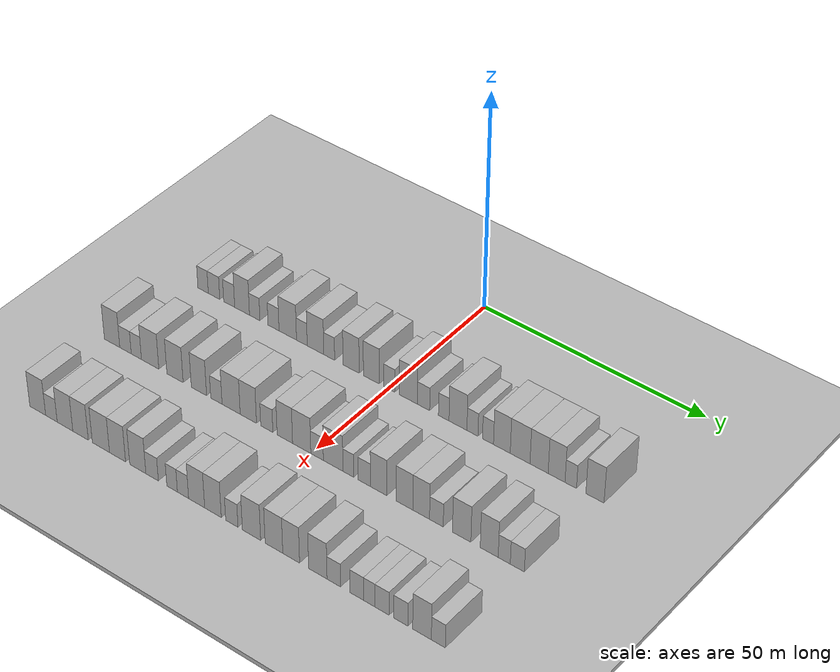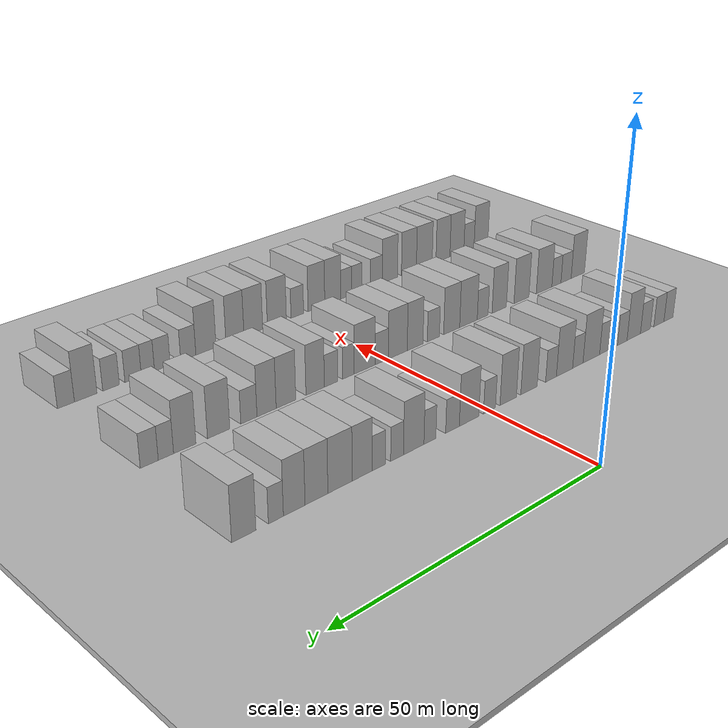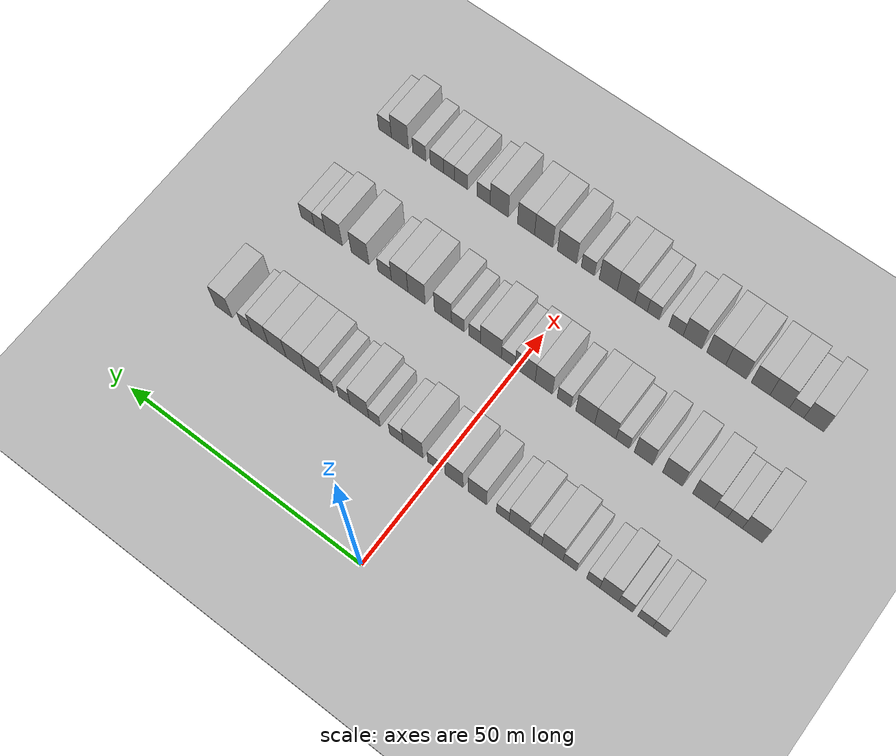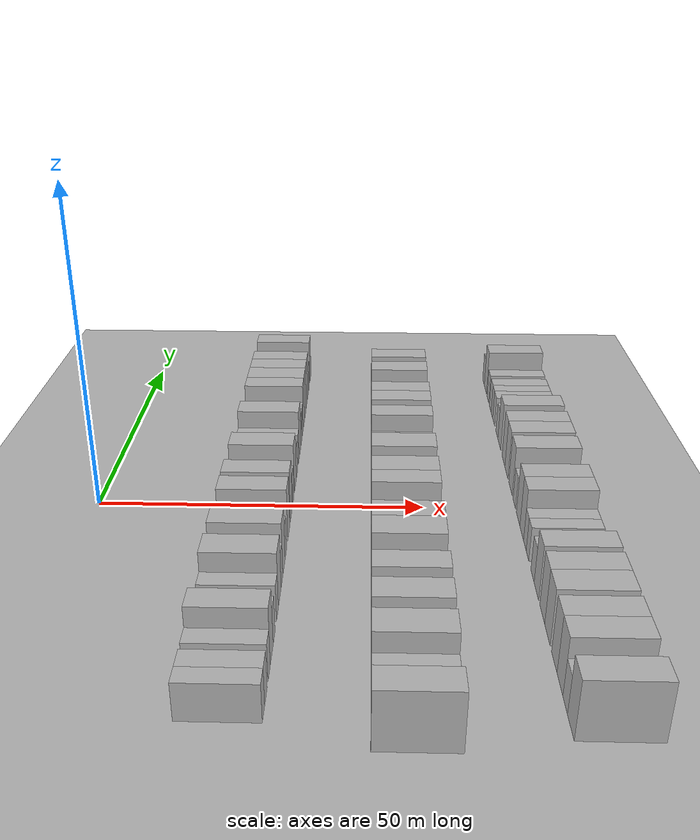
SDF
<sdf version="1.6">
 <world name="default">
  <include><name>ground_plane_1</name><uri>model://HANNAS_ground_plane</uri></include>
  <include>
   <name>ground_plane_2</name>
   <uri>model://HANNAS_ground_plane</uri>
   <pose>100 0 0  0 0 0</pose>
  </include>
  <model name="building_51">
   <static>1</static>
   <pose>25.0000 -44.6773 0 0.000000 0.000000 0.000000</pose>
   <link name="link">
    <pose>0 0 3.00 0 0 0</pose>
    <collision name="collision"><geometry><box><size>10.0000 2.6390 6.0000</size></box></geometry></collision>
    <visual name="visual">
     <cast_shadows>0</cast_shadows>
     <geometry><box><size>10.0000 2.6390 6.0000</size></box></geometry>
     <material>
      <script>
       <uri>model://HANNAS_wall/materials/scripts</uri>
       <uri>model://HANNAS_wall/materials/textures</uri>
       <name>vrc/HANNAS_wall</name>
      </script>
     </material>
    </visual>
   </link>
  </model>
  <model name="building_52">
   <static>1</static>
   <pose>25.0000 -41.9089 0 0.000000 0.000000 0.000000</pose>
   <link name="link">
    <pose>0 0 3.00 0 0 0</pose>
    <collision name="collision"><geometry><box><size>10.0000 2.8977 6.0000</size></box></geometry></collision>
    <visual name="visual">
     <cast_shadows>0</cast_shadows>
     <geometry><box><size>10.0000 2.8977 6.0000</size></box></geometry>
     <material>
      <script>
       <uri>model://HANNAS_wall/materials/scripts</uri>
       <uri>model://HANNAS_wall/materials/textures</uri>
       <name>vrc/HANNAS_wall</name>
      </script>
     </material>
    </visual>
   </link>
  </model>
  <model name="building_53">
   <static>1</static>
   <pose>25.0000 -38.0846 0 0.000000 0.000000 0.000000</pose>
   <link name="link">
    <pose>0 0 3.00 0 0 0</pose>
    <collision name="collision"><geometry><box><size>10.0000 2.7510 6.0000</size></box></geometry></collision>
    <visual name="visual">
     <cast_shadows>0</cast_shadows>
     <geometry><box><size>10.0000 2.7510 6.0000</size></box></geometry>
     <material>
      <script>
       <uri>model://HANNAS_wall/materials/scripts</uri>
       <uri>model://HANNAS_wall/materials/textures</uri>
       <name>vrc/HANNAS_wall</name>
      </script>
     </material>
    </visual>
   </link>
  </model>
  <model name="building_54">
   <static>1</static>
   <pose>25.0000 -34.8641 0 0.000000 0.000000 0.000000</pose>
   <link name="link">
    <pose>0 0 4.50 0 0 0</pose>
    <collision name="collision"><geometry><box><size>10.0000 3.6899 9.0000</size></box></geometry></collision>
    <visual name="visual">
     <cast_shadows>0</cast_shadows>
     <geometry><box><size>10.0000 3.6899 9.0000</size></box></geometry>
     <material>
      <script>
       <uri>model://HANNAS_wall/materials/scripts</uri>
       <uri>model://HANNAS_wall/materials/textures</uri>
       <name>vrc/HANNAS_wall</name>
      </script>
     </material>
    </visual>
   </link>
  </model>
  <model name="building_55">
   <static>1</static>
   <pose>25.0000 -31.7235 0 0.000000 0.000000 0.000000</pose>
   <link name="link">
    <pose>0 0 3.00 0 0 0</pose>
    <collision name="collision"><geometry><box><size>10.0000 2.5914 6.0000</size></box></geometry></collision>
    <visual name="visual">
     <cast_shadows>0</cast_shadows>
     <geometry><box><size>10.0000 2.5914 6.0000</size></box></geometry>
     <material>
      <script>
       <uri>model://HANNAS_wall/materials/scripts</uri>
       <uri>model://HANNAS_wall/materials/textures</uri>
       <name>vrc/HANNAS_wall</name>
      </script>
     </material>
    </visual>
   </link>
  </model>
  <model name="building_56">
   <static>1</static>
   <pose>25.0000 -27.0777 0 0.000000 0.000000 0.000000</pose>
   <link name="link">
    <pose>0 0 3.00 0 0 0</pose>
    <collision name="collision"><geometry><box><size>10.0000 2.7000 6.0000</size></box></geometry></collision>
    <visual name="visual">
     <cast_shadows>0</cast_shadows>
     <geometry><box><size>10.0000 2.7000 6.0000</size></box></geometry>
     <material>
      <script>
       <uri>model://HANNAS_wall/materials/scripts</uri>
       <uri>model://HANNAS_wall/materials/textures</uri>
       <name>vrc/HANNAS_wall</name>
      </script>
     </material>
    </visual>
   </link>
  </model>
  <model name="building_57">
   <static>1</static>
   <pose>25.0000 -23.5935 0 0.000000 0.000000 0.000000</pose>
   <link name="link">
    <pose>0 0 4.50 0 0 0</pose>
    <collision name="collision"><geometry><box><size>10.0000 4.2684 9.0000</size></box></geometry></collision>
    <visual name="visual">
     <cast_shadows>0</cast_shadows>
     <geometry><box><size>10.0000 4.2684 9.0000</size></box></geometry>
     <material>
      <script>
       <uri>model://HANNAS_wall/materials/scripts</uri>
       <uri>model://HANNAS_wall/materials/textures</uri>
       <name>vrc/HANNAS_wall</name>
      </script>
     </material>
    </visual>
   </link>
  </model>
  <model name="building_58">
   <static>1</static>
   <pose>25.0000 -20.1614 0 0.000000 0.000000 0.000000</pose>
   <link name="link">
    <pose>0 0 3.00 0 0 0</pose>
    <collision name="collision"><geometry><box><size>10.0000 2.5958 6.0000</size></box></geometry></collision>
    <visual name="visual">
     <cast_shadows>0</cast_shadows>
     <geometry><box><size>10.0000 2.5958 6.0000</size></box></geometry>
     <material>
      <script>
       <uri>model://HANNAS_wall/materials/scripts</uri>
       <uri>model://HANNAS_wall/materials/textures</uri>
       <name>vrc/HANNAS_wall</name>
      </script>
     </material>
    </visual>
   </link>
  </model>
  <model name="building_59">
   <static>1</static>
   <pose>25.0000 -16.8657 0 0.000000 0.000000 0.000000</pose>
   <link name="link">
    <pose>0 0 4.50 0 0 0</pose>
    <collision name="collision"><geometry><box><size>10.0000 3.9956 9.0000</size></box></geometry></collision>
    <visual name="visual">
     <cast_shadows>0</cast_shadows>
     <geometry><box><size>10.0000 3.9956 9.0000</size></box></geometry>
     <material>
      <script>
       <uri>model://HANNAS_wall/materials/scripts</uri>
       <uri>model://HANNAS_wall/materials/textures</uri>
       <name>vrc/HANNAS_wall</name>
      </script>
     </material>
    </visual>
   </link>
  </model>
  <model name="building_60">
   <static>1</static>
   <pose>25.0000 -13.5684 0 0.000000 0.000000 0.000000</pose>
   <link name="link">
    <pose>0 0 3.00 0 0 0</pose>
    <collision name="collision"><geometry><box><size>10.0000 2.5990 6.0000</size></box></geometry></collision>
    <visual name="visual">
     <cast_shadows>0</cast_shadows>
     <geometry><box><size>10.0000 2.5990 6.0000</size></box></geometry>
     <material>
      <script>
       <uri>model://HANNAS_wall/materials/scripts</uri>
       <uri>model://HANNAS_wall/materials/textures</uri>
       <name>vrc/HANNAS_wall</name>
      </script>
     </material>
    </visual>
   </link>
  </model>
  <model name="building_61">
   <static>1</static>
   <pose>25.0000 -8.3560 0 0.000000 0.000000 0.000000</pose>
   <link name="link">
    <pose>0 0 4.50 0 0 0</pose>
    <collision name="collision"><geometry><box><size>10.0000 3.8258 9.0000</size></box></geometry></collision>
    <visual name="visual">
     <cast_shadows>0</cast_shadows>
     <geometry><box><size>10.0000 3.8258 9.0000</size></box></geometry>
     <material>
      <script>
       <uri>model://HANNAS_wall/materials/scripts</uri>
       <uri>model://HANNAS_wall/materials/textures</uri>
       <name>vrc/HANNAS_wall</name>
      </script>
     </material>
    </visual>
   </link>
  </model>
  <model name="building_62">
   <static>1</static>
   <pose>25.0000 -3.5872 0 0.000000 0.000000 0.000000</pose>
   <link name="link">
    <pose>0 0 4.50 0 0 0</pose>
    <collision name="collision"><geometry><box><size>10.0000 3.7118 9.0000</size></box></geometry></collision>
    <visual name="visual">
     <cast_shadows>0</cast_shadows>
     <geometry><box><size>10.0000 3.7118 9.0000</size></box></geometry>
     <material>
      <script>
       <uri>model://HANNAS_wall/materials/scripts</uri>
       <uri>model://HANNAS_wall/materials/textures</uri>
       <name>vrc/HANNAS_wall</name>
      </script>
     </material>
    </visual>
   </link>
  </model>
  <model name="building_63">
   <static>1</static>
   <pose>25.0000 0.5868 0 0.000000 0.000000 0.000000</pose>
   <link name="link">
    <pose>0 0 3.00 0 0 0</pose>
    <collision name="collision"><geometry><box><size>10.0000 2.6362 6.0000</size></box></geometry></collision>
    <visual name="visual">
     <cast_shadows>0</cast_shadows>
     <geometry><box><size>10.0000 2.6362 6.0000</size></box></geometry>
     <material>
      <script>
       <uri>model://HANNAS_wall/materials/scripts</uri>
       <uri>model://HANNAS_wall/materials/textures</uri>
       <name>vrc/HANNAS_wall</name>
      </script>
     </material>
    </visual>
   </link>
  </model>
  <model name="building_64">
   <static>1</static>
   <pose>25.0000 4.9924 0 0.000000 0.000000 0.000000</pose>
   <link name="link">
    <pose>0 0 4.50 0 0 0</pose>
    <collision name="collision"><geometry><box><size>10.0000 4.1749 9.0000</size></box></geometry></collision>
    <visual name="visual">
     <cast_shadows>0</cast_shadows>
     <geometry><box><size>10.0000 4.1749 9.0000</size></box></geometry>
     <material>
      <script>
       <uri>model://HANNAS_wall/materials/scripts</uri>
       <uri>model://HANNAS_wall/materials/textures</uri>
       <name>vrc/HANNAS_wall</name>
      </script>
     </material>
    </visual>
   </link>
  </model>
  <model name="building_65">
   <static>1</static>
   <pose>25.0000 8.5058 0 0.000000 0.000000 0.000000</pose>
   <link name="link">
    <pose>0 0 3.00 0 0 0</pose>
    <collision name="collision"><geometry><box><size>10.0000 2.8520 6.0000</size></box></geometry></collision>
    <visual name="visual">
     <cast_shadows>0</cast_shadows>
     <geometry><box><size>10.0000 2.8520 6.0000</size></box></geometry>
     <material>
      <script>
       <uri>model://HANNAS_wall/materials/scripts</uri>
       <uri>model://HANNAS_wall/materials/textures</uri>
       <name>vrc/HANNAS_wall</name>
      </script>
     </material>
    </visual>
   </link>
  </model>
  <model name="building_66">
   <static>1</static>
   <pose>25.0000 13.1351 0 0.000000 0.000000 0.000000</pose>
   <link name="link">
    <pose>0 0 3.00 0 0 0</pose>
    <collision name="collision"><geometry><box><size>10.0000 2.4065 6.0000</size></box></geometry></collision>
    <visual name="visual">
     <cast_shadows>0</cast_shadows>
     <geometry><box><size>10.0000 2.4065 6.0000</size></box></geometry>
     <material>
      <script>
       <uri>model://HANNAS_wall/materials/scripts</uri>
       <uri>model://HANNAS_wall/materials/textures</uri>
       <name>vrc/HANNAS_wall</name>
      </script>
     </material>
    </visual>
   </link>
  </model>
  <model name="building_67">
   <static>1</static>
   <pose>25.0000 16.3611 0 0.000000 0.000000 0.000000</pose>
   <link name="link">
    <pose>0 0 4.50 0 0 0</pose>
    <collision name="collision"><geometry><box><size>10.0000 4.0454 9.0000</size></box></geometry></collision>
    <visual name="visual">
     <cast_shadows>0</cast_shadows>
     <geometry><box><size>10.0000 4.0454 9.0000</size></box></geometry>
     <material>
      <script>
       <uri>model://HANNAS_wall/materials/scripts</uri>
       <uri>model://HANNAS_wall/materials/textures</uri>
       <name>vrc/HANNAS_wall</name>
      </script>
     </material>
    </visual>
   </link>
  </model>
  <model name="building_68">
   <static>1</static>
   <pose>25.0000 19.6219 0 0.000000 0.000000 0.000000</pose>
   <link name="link">
    <pose>0 0 3.00 0 0 0</pose>
    <collision name="collision"><geometry><box><size>10.0000 2.4762 6.0000</size></box></geometry></collision>
    <visual name="visual">
     <cast_shadows>0</cast_shadows>
     <geometry><box><size>10.0000 2.4762 6.0000</size></box></geometry>
     <material>
      <script>
       <uri>model://HANNAS_wall/materials/scripts</uri>
       <uri>model://HANNAS_wall/materials/textures</uri>
       <name>vrc/HANNAS_wall</name>
      </script>
     </material>
    </visual>
   </link>
  </model>
  <model name="building_69">
   <static>1</static>
   <pose>25.0000 23.0884 0 0.000000 0.000000 0.000000</pose>
   <link name="link">
    <pose>0 0 3.00 0 0 0</pose>
    <collision name="collision"><geometry><box><size>10.0000 2.4568 6.0000</size></box></geometry></collision>
    <visual name="visual">
     <cast_shadows>0</cast_shadows>
     <geometry><box><size>10.0000 2.4568 6.0000</size></box></geometry>
     <material>
      <script>
       <uri>model://HANNAS_wall/materials/scripts</uri>
       <uri>model://HANNAS_wall/materials/textures</uri>
       <name>vrc/HANNAS_wall</name>
      </script>
     </material>
    </visual>
   </link>
  </model>
  <model name="building_70">
   <static>1</static>
   <pose>25.0000 26.1703 0 0.000000 0.000000 0.000000</pose>
   <link name="link">
    <pose>0 0 4.50 0 0 0</pose>
    <collision name="collision"><geometry><box><size>10.0000 3.7072 9.0000</size></box></geometry></collision>
    <visual name="visual">
     <cast_shadows>0</cast_shadows>
     <geometry><box><size>10.0000 3.7072 9.0000</size></box></geometry>
     <material>
      <script>
       <uri>model://HANNAS_wall/materials/scripts</uri>
       <uri>model://HANNAS_wall/materials/textures</uri>
       <name>vrc/HANNAS_wall</name>
      </script>
     </material>
    </visual>
   </link>
  </model>
  <model name="building_71">
   <static>1</static>
   <pose>25.0000 30.1894 0 0.000000 0.000000 0.000000</pose>
   <link name="link">
    <pose>0 0 4.50 0 0 0</pose>
    <collision name="collision"><geometry><box><size>10.0000 4.3310 9.0000</size></box></geometry></collision>
    <visual name="visual">
     <cast_shadows>0</cast_shadows>
     <geometry><box><size>10.0000 4.3310 9.0000</size></box></geometry>
     <material>
      <script>
       <uri>model://HANNAS_wall/materials/scripts</uri>
       <uri>model://HANNAS_wall/materials/textures</uri>
       <name>vrc/HANNAS_wall</name>
      </script>
     </material>
    </visual>
   </link>
  </model>
  <model name="building_72">
   <static>1</static>
   <pose>25.0000 34.3287 0 0.000000 0.000000 0.000000</pose>
   <link name="link">
    <pose>0 0 4.50 0 0 0</pose>
    <collision name="collision"><geometry><box><size>10.0000 3.9475 9.0000</size></box></geometry></collision>
    <visual name="visual">
     <cast_shadows>0</cast_shadows>
     <geometry><box><size>10.0000 3.9475 9.0000</size></box></geometry>
     <material>
      <script>
       <uri>model://HANNAS_wall/materials/scripts</uri>
       <uri>model://HANNAS_wall/materials/textures</uri>
       <name>vrc/HANNAS_wall</name>
      </script>
     </material>
    </visual>
   </link>
  </model>
  <model name="building_73">
   <static>1</static>
   <pose>25.0000 38.1238 0 0.000000 0.000000 0.000000</pose>
   <link name="link">
    <pose>0 0 4.50 0 0 0</pose>
    <collision name="collision"><geometry><box><size>10.0000 3.6427 9.0000</size></box></geometry></collision>
    <visual name="visual">
     <cast_shadows>0</cast_shadows>
     <geometry><box><size>10.0000 3.6427 9.0000</size></box></geometry>
     <material>
      <script>
       <uri>model://HANNAS_wall/materials/scripts</uri>
       <uri>model://HANNAS_wall/materials/textures</uri>
       <name>vrc/HANNAS_wall</name>
      </script>
     </material>
    </visual>
   </link>
  </model>
  <model name="building_74">
   <static>1</static>
   <pose>25.0000 41.1825 0 0.000000 0.000000 0.000000</pose>
   <link name="link">
    <pose>0 0 3.00 0 0 0</pose>
    <collision name="collision"><geometry><box><size>10.0000 2.4746 6.0000</size></box></geometry></collision>
    <visual name="visual">
     <cast_shadows>0</cast_shadows>
     <geometry><box><size>10.0000 2.4746 6.0000</size></box></geometry>
     <material>
      <script>
       <uri>model://HANNAS_wall/materials/scripts</uri>
       <uri>model://HANNAS_wall/materials/textures</uri>
       <name>vrc/HANNAS_wall</name>
      </script>
     </material>
    </visual>
   </link>
  </model>
  <model name="building_75">
   <static>1</static>
   <pose>25.0000 46.3475 0 0.000000 0.000000 0.000000</pose>
   <link name="link">
    <pose>0 0 4.50 0 0 0</pose>
    <collision name="collision"><geometry><box><size>10.0000 3.8553 9.0000</size></box></geometry></collision>
    <visual name="visual">
     <cast_shadows>0</cast_shadows>
     <geometry><box><size>10.0000 3.8553 9.0000</size></box></geometry>
     <material>
      <script>
       <uri>model://HANNAS_wall/materials/scripts</uri>
       <uri>model://HANNAS_wall/materials/textures</uri>
       <name>vrc/HANNAS_wall</name>
      </script>
     </material>
    </visual>
   </link>
  </model>
  <model name="building_174">
   <static>1</static>
   <pose>47.0000 -47.8813 0 0.000000 0.000000 0.000000</pose>
   <link name="link">
    <pose>0 0 4.50 0 0 0</pose>
    <collision name="collision"><geometry><box><size>10.0000 3.8901 9.0000</size></box></geometry></collision>
    <visual name="visual">
     <cast_shadows>0</cast_shadows>
     <geometry><box><size>10.0000 3.8901 9.0000</size></box></geometry>
     <material>
      <script>
       <uri>model://HANNAS_wall/materials/scripts</uri>
       <uri>model://HANNAS_wall/materials/textures</uri>
       <name>vrc/HANNAS_wall</name>
      </script>
     </material>
    </visual>
   </link>
  </model>
  <model name="building_175">
   <static>1</static>
   <pose>47.0000 -44.4855 0 0.000000 0.000000 0.000000</pose>
   <link name="link">
    <pose>0 0 3.00 0 0 0</pose>
    <collision name="collision"><geometry><box><size>10.0000 2.9015 6.0000</size></box></geometry></collision>
    <visual name="visual">
     <cast_shadows>0</cast_shadows>
     <geometry><box><size>10.0000 2.9015 6.0000</size></box></geometry>
     <material>
      <script>
       <uri>model://HANNAS_wall/materials/scripts</uri>
       <uri>model://HANNAS_wall/materials/textures</uri>
       <name>vrc/HANNAS_wall</name>
      </script>
     </material>
    </visual>
   </link>
  </model>
  <model name="building_176">
   <static>1</static>
   <pose>47.0000 -41.7573 0 0.000000 0.000000 0.000000</pose>
   <link name="link">
    <pose>0 0 3.00 0 0 0</pose>
    <collision name="collision"><geometry><box><size>10.0000 2.5550 6.0000</size></box></geometry></collision>
    <visual name="visual">
     <cast_shadows>0</cast_shadows>
     <geometry><box><size>10.0000 2.5550 6.0000</size></box></geometry>
     <material>
      <script>
       <uri>model://HANNAS_wall/materials/scripts</uri>
       <uri>model://HANNAS_wall/materials/textures</uri>
       <name>vrc/HANNAS_wall</name>
      </script>
     </material>
    </visual>
   </link>
  </model>
  <model name="building_177">
   <static>1</static>
   <pose>47.0000 -38.3159 0 0.000000 0.000000 0.000000</pose>
   <link name="link">
    <pose>0 0 4.50 0 0 0</pose>
    <collision name="collision"><geometry><box><size>10.0000 4.3277 9.0000</size></box></geometry></collision>
    <visual name="visual">
     <cast_shadows>0</cast_shadows>
     <geometry><box><size>10.0000 4.3277 9.0000</size></box></geometry>
     <material>
      <script>
       <uri>model://HANNAS_wall/materials/scripts</uri>
       <uri>model://HANNAS_wall/materials/textures</uri>
       <name>vrc/HANNAS_wall</name>
      </script>
     </material>
    </visual>
   </link>
  </model>
  <model name="building_178">
   <static>1</static>
   <pose>47.0000 -32.1531 0 0.000000 0.000000 0.000000</pose>
   <link name="link">
    <pose>0 0 4.50 0 0 0</pose>
    <collision name="collision"><geometry><box><size>10.0000 3.9978 9.0000</size></box></geometry></collision>
    <visual name="visual">
     <cast_shadows>0</cast_shadows>
     <geometry><box><size>10.0000 3.9978 9.0000</size></box></geometry>
     <material>
      <script>
       <uri>model://HANNAS_wall/materials/scripts</uri>
       <uri>model://HANNAS_wall/materials/textures</uri>
       <name>vrc/HANNAS_wall</name>
      </script>
     </material>
    </visual>
   </link>
  </model>
  <model name="building_179">
   <static>1</static>
   <pose>47.0000 -26.2985 0 0.000000 0.000000 0.000000</pose>
   <link name="link">
    <pose>0 0 4.50 0 0 0</pose>
    <collision name="collision"><geometry><box><size>10.0000 3.7114 9.0000</size></box></geometry></collision>
    <visual name="visual">
     <cast_shadows>0</cast_shadows>
     <geometry><box><size>10.0000 3.7114 9.0000</size></box></geometry>
     <material>
      <script>
       <uri>model://HANNAS_wall/materials/scripts</uri>
       <uri>model://HANNAS_wall/materials/textures</uri>
       <name>vrc/HANNAS_wall</name>
      </script>
     </material>
    </visual>
   </link>
  </model>
  <model name="building_180">
   <static>1</static>
   <pose>47.0000 -22.0741 0 0.000000 0.000000 0.000000</pose>
   <link name="link">
    <pose>0 0 3.00 0 0 0</pose>
    <collision name="collision"><geometry><box><size>10.0000 2.7375 6.0000</size></box></geometry></collision>
    <visual name="visual">
     <cast_shadows>0</cast_shadows>
     <geometry><box><size>10.0000 2.7375 6.0000</size></box></geometry>
     <material>
      <script>
       <uri>model://HANNAS_wall/materials/scripts</uri>
       <uri>model://HANNAS_wall/materials/textures</uri>
       <name>vrc/HANNAS_wall</name>
      </script>
     </material>
    </visual>
   </link>
  </model>
  <model name="building_181">
   <static>1</static>
   <pose>47.0000 -18.5333 0 0.000000 0.000000 0.000000</pose>
   <link name="link">
    <pose>0 0 4.50 0 0 0</pose>
    <collision name="collision"><geometry><box><size>10.0000 4.3440 9.0000</size></box></geometry></collision>
    <visual name="visual">
     <cast_shadows>0</cast_shadows>
     <geometry><box><size>10.0000 4.3440 9.0000</size></box></geometry>
     <material>
      <script>
       <uri>model://HANNAS_wall/materials/scripts</uri>
       <uri>model://HANNAS_wall/materials/textures</uri>
       <name>vrc/HANNAS_wall</name>
      </script>
     </material>
    </visual>
   </link>
  </model>
  <model name="building_182">
   <static>1</static>
   <pose>47.0000 -14.4250 0 0.000000 0.000000 0.000000</pose>
   <link name="link">
    <pose>0 0 4.50 0 0 0</pose>
    <collision name="collision"><geometry><box><size>10.0000 3.8727 9.0000</size></box></geometry></collision>
    <visual name="visual">
     <cast_shadows>0</cast_shadows>
     <geometry><box><size>10.0000 3.8727 9.0000</size></box></geometry>
     <material>
      <script>
       <uri>model://HANNAS_wall/materials/scripts</uri>
       <uri>model://HANNAS_wall/materials/textures</uri>
       <name>vrc/HANNAS_wall</name>
      </script>
     </material>
    </visual>
   </link>
  </model>
  <model name="building_183">
   <static>1</static>
   <pose>47.0000 -10.0595 0 0.000000 0.000000 0.000000</pose>
   <link name="link">
    <pose>0 0 3.00 0 0 0</pose>
    <collision name="collision"><geometry><box><size>10.0000 2.8583 6.0000</size></box></geometry></collision>
    <visual name="visual">
     <cast_shadows>0</cast_shadows>
     <geometry><box><size>10.0000 2.8583 6.0000</size></box></geometry>
     <material>
      <script>
       <uri>model://HANNAS_wall/materials/scripts</uri>
       <uri>model://HANNAS_wall/materials/textures</uri>
       <name>vrc/HANNAS_wall</name>
      </script>
     </material>
    </visual>
   </link>
  </model>
  <model name="building_184">
   <static>1</static>
   <pose>47.0000 -5.8264 0 0.000000 0.000000 0.000000</pose>
   <link name="link">
    <pose>0 0 4.50 0 0 0</pose>
    <collision name="collision"><geometry><box><size>10.0000 3.6078 9.0000</size></box></geometry></collision>
    <visual name="visual">
     <cast_shadows>0</cast_shadows>
     <geometry><box><size>10.0000 3.6078 9.0000</size></box></geometry>
     <material>
      <script>
       <uri>model://HANNAS_wall/materials/scripts</uri>
       <uri>model://HANNAS_wall/materials/textures</uri>
       <name>vrc/HANNAS_wall</name>
      </script>
     </material>
    </visual>
   </link>
  </model>
  <model name="building_185">
   <static>1</static>
   <pose>47.0000 -1.9125 0 0.000000 0.000000 0.000000</pose>
   <link name="link">
    <pose>0 0 4.50 0 0 0</pose>
    <collision name="collision"><geometry><box><size>10.0000 4.2201 9.0000</size></box></geometry></collision>
    <visual name="visual">
     <cast_shadows>0</cast_shadows>
     <geometry><box><size>10.0000 4.2201 9.0000</size></box></geometry>
     <material>
      <script>
       <uri>model://HANNAS_wall/materials/scripts</uri>
       <uri>model://HANNAS_wall/materials/textures</uri>
       <name>vrc/HANNAS_wall</name>
      </script>
     </material>
    </visual>
   </link>
  </model>
  <model name="building_186">
   <static>1</static>
   <pose>47.0000 1.6426 0 0.000000 0.000000 0.000000</pose>
   <link name="link">
    <pose>0 0 3.00 0 0 0</pose>
    <collision name="collision"><geometry><box><size>10.0000 2.8900 6.0000</size></box></geometry></collision>
    <visual name="visual">
     <cast_shadows>0</cast_shadows>
     <geometry><box><size>10.0000 2.8900 6.0000</size></box></geometry>
     <material>
      <script>
       <uri>model://HANNAS_wall/materials/scripts</uri>
       <uri>model://HANNAS_wall/materials/textures</uri>
       <name>vrc/HANNAS_wall</name>
      </script>
     </material>
    </visual>
   </link>
  </model>
  <model name="building_187">
   <static>1</static>
   <pose>47.0000 5.3324 0 0.000000 0.000000 0.000000</pose>
   <link name="link">
    <pose>0 0 4.50 0 0 0</pose>
    <collision name="collision"><geometry><box><size>10.0000 4.4896 9.0000</size></box></geometry></collision>
    <visual name="visual">
     <cast_shadows>0</cast_shadows>
     <geometry><box><size>10.0000 4.4896 9.0000</size></box></geometry>
     <material>
      <script>
       <uri>model://HANNAS_wall/materials/scripts</uri>
       <uri>model://HANNAS_wall/materials/textures</uri>
       <name>vrc/HANNAS_wall</name>
      </script>
     </material>
    </visual>
   </link>
  </model>
  <model name="building_188">
   <static>1</static>
   <pose>47.0000 8.7912 0 0.000000 0.000000 0.000000</pose>
   <link name="link">
    <pose>0 0 3.00 0 0 0</pose>
    <collision name="collision"><geometry><box><size>10.0000 2.4279 6.0000</size></box></geometry></collision>
    <visual name="visual">
     <cast_shadows>0</cast_shadows>
     <geometry><box><size>10.0000 2.4279 6.0000</size></box></geometry>
     <material>
      <script>
       <uri>model://HANNAS_wall/materials/scripts</uri>
       <uri>model://HANNAS_wall/materials/textures</uri>
       <name>vrc/HANNAS_wall</name>
      </script>
     </material>
    </visual>
   </link>
  </model>
  <model name="building_189">
   <static>1</static>
   <pose>47.0000 12.3825 0 0.000000 0.000000 0.000000</pose>
   <link name="link">
    <pose>0 0 3.00 0 0 0</pose>
    <collision name="collision"><geometry><box><size>10.0000 2.7548 6.0000</size></box></geometry></collision>
    <visual name="visual">
     <cast_shadows>0</cast_shadows>
     <geometry><box><size>10.0000 2.7548 6.0000</size></box></geometry>
     <material>
      <script>
       <uri>model://HANNAS_wall/materials/scripts</uri>
       <uri>model://HANNAS_wall/materials/textures</uri>
       <name>vrc/HANNAS_wall</name>
      </script>
     </material>
    </visual>
   </link>
  </model>
  <model name="building_190">
   <static>1</static>
   <pose>47.0000 15.6111 0 0.000000 0.000000 0.000000</pose>
   <link name="link">
    <pose>0 0 4.50 0 0 0</pose>
    <collision name="collision"><geometry><box><size>10.0000 3.7023 9.0000</size></box></geometry></collision>
    <visual name="visual">
     <cast_shadows>0</cast_shadows>
     <geometry><box><size>10.0000 3.7023 9.0000</size></box></geometry>
     <material>
      <script>
       <uri>model://HANNAS_wall/materials/scripts</uri>
       <uri>model://HANNAS_wall/materials/textures</uri>
       <name>vrc/HANNAS_wall</name>
      </script>
     </material>
    </visual>
   </link>
  </model>
  <model name="building_191">
   <static>1</static>
   <pose>47.0000 21.3549 0 0.000000 0.000000 0.000000</pose>
   <link name="link">
    <pose>0 0 4.50 0 0 0</pose>
    <collision name="collision"><geometry><box><size>10.0000 3.7853 9.0000</size></box></geometry></collision>
    <visual name="visual">
     <cast_shadows>0</cast_shadows>
     <geometry><box><size>10.0000 3.7853 9.0000</size></box></geometry>
     <material>
      <script>
       <uri>model://HANNAS_wall/materials/scripts</uri>
       <uri>model://HANNAS_wall/materials/textures</uri>
       <name>vrc/HANNAS_wall</name>
      </script>
     </material>
    </visual>
   </link>
  </model>
  <model name="building_192">
   <static>1</static>
   <pose>47.0000 25.0556 0 0.000000 0.000000 0.000000</pose>
   <link name="link">
    <pose>0 0 4.50 0 0 0</pose>
    <collision name="collision"><geometry><box><size>10.0000 3.6160 9.0000</size></box></geometry></collision>
    <visual name="visual">
     <cast_shadows>0</cast_shadows>
     <geometry><box><size>10.0000 3.6160 9.0000</size></box></geometry>
     <material>
      <script>
       <uri>model://HANNAS_wall/materials/scripts</uri>
       <uri>model://HANNAS_wall/materials/textures</uri>
       <name>vrc/HANNAS_wall</name>
      </script>
     </material>
    </visual>
   </link>
  </model>
  <model name="building_193">
   <static>1</static>
   <pose>47.0000 28.3543 0 0.000000 0.000000 0.000000</pose>
   <link name="link">
    <pose>0 0 3.00 0 0 0</pose>
    <collision name="collision"><geometry><box><size>10.0000 2.9815 6.0000</size></box></geometry></collision>
    <visual name="visual">
     <cast_shadows>0</cast_shadows>
     <geometry><box><size>10.0000 2.9815 6.0000</size></box></geometry>
     <material>
      <script>
       <uri>model://HANNAS_wall/materials/scripts</uri>
       <uri>model://HANNAS_wall/materials/textures</uri>
       <name>vrc/HANNAS_wall</name>
      </script>
     </material>
    </visual>
   </link>
  </model>
  <model name="building_194">
   <static>1</static>
   <pose>47.0000 33.8265 0 0.000000 0.000000 0.000000</pose>
   <link name="link">
    <pose>0 0 4.50 0 0 0</pose>
    <collision name="collision"><geometry><box><size>10.0000 3.9629 9.0000</size></box></geometry></collision>
    <visual name="visual">
     <cast_shadows>0</cast_shadows>
     <geometry><box><size>10.0000 3.9629 9.0000</size></box></geometry>
     <material>
      <script>
       <uri>model://HANNAS_wall/materials/scripts</uri>
       <uri>model://HANNAS_wall/materials/textures</uri>
       <name>vrc/HANNAS_wall</name>
      </script>
     </material>
    </visual>
   </link>
  </model>
  <model name="building_195">
   <static>1</static>
   <pose>47.0000 39.7155 0 0.000000 0.000000 0.000000</pose>
   <link name="link">
    <pose>0 0 4.50 0 0 0</pose>
    <collision name="collision"><geometry><box><size>10.0000 3.8151 9.0000</size></box></geometry></collision>
    <visual name="visual">
     <cast_shadows>0</cast_shadows>
     <geometry><box><size>10.0000 3.8151 9.0000</size></box></geometry>
     <material>
      <script>
       <uri>model://HANNAS_wall/materials/scripts</uri>
       <uri>model://HANNAS_wall/materials/textures</uri>
       <name>vrc/HANNAS_wall</name>
      </script>
     </material>
    </visual>
   </link>
  </model>
  <model name="building_196">
   <static>1</static>
   <pose>47.0000 42.9011 0 0.000000 0.000000 0.000000</pose>
   <link name="link">
    <pose>0 0 3.00 0 0 0</pose>
    <collision name="collision"><geometry><box><size>10.0000 2.5560 6.0000</size></box></geometry></collision>
    <visual name="visual">
     <cast_shadows>0</cast_shadows>
     <geometry><box><size>10.0000 2.5560 6.0000</size></box></geometry>
     <material>
      <script>
       <uri>model://HANNAS_wall/materials/scripts</uri>
       <uri>model://HANNAS_wall/materials/textures</uri>
       <name>vrc/HANNAS_wall</name>
      </script>
     </material>
    </visual>
   </link>
  </model>
  <model name="building_197">
   <static>1</static>
   <pose>47.0000 45.6549 0 0.000000 0.000000 0.000000</pose>
   <link name="link">
    <pose>0 0 3.00 0 0 0</pose>
    <collision name="collision"><geometry><box><size>10.0000 2.9517 6.0000</size></box></geometry></collision>
    <visual name="visual">
     <cast_shadows>0</cast_shadows>
     <geometry><box><size>10.0000 2.9517 6.0000</size></box></geometry>
     <material>
      <script>
       <uri>model://HANNAS_wall/materials/scripts</uri>
       <uri>model://HANNAS_wall/materials/textures</uri>
       <name>vrc/HANNAS_wall</name>
      </script>
     </material>
    </visual>
   </link>
  </model>
  <model name="building_294">
   <static>1</static>
   <pose>69.0000 -45.7512 0 0.000000 0.000000 0.000000</pose>
   <link name="link">
    <pose>0 0 4.50 0 0 0</pose>
    <collision name="collision"><geometry><box><size>10.0000 3.9668 9.0000</size></box></geometry></collision>
    <visual name="visual">
     <cast_shadows>0</cast_shadows>
     <geometry><box><size>10.0000 3.9668 9.0000</size></box></geometry>
     <material>
      <script>
       <uri>model://HANNAS_wall/materials/scripts</uri>
       <uri>model://HANNAS_wall/materials/textures</uri>
       <name>vrc/HANNAS_wall</name>
      </script>
     </material>
    </visual>
   </link>
  </model>
  <model name="building_295">
   <static>1</static>
   <pose>69.0000 -42.3297 0 0.000000 0.000000 0.000000</pose>
   <link name="link">
    <pose>0 0 3.00 0 0 0</pose>
    <collision name="collision"><geometry><box><size>10.0000 2.8762 6.0000</size></box></geometry></collision>
    <visual name="visual">
     <cast_shadows>0</cast_shadows>
     <geometry><box><size>10.0000 2.8762 6.0000</size></box></geometry>
     <material>
      <script>
       <uri>model://HANNAS_wall/materials/scripts</uri>
       <uri>model://HANNAS_wall/materials/textures</uri>
       <name>vrc/HANNAS_wall</name>
      </script>
     </material>
    </visual>
   </link>
  </model>
  <model name="building_296">
   <static>1</static>
   <pose>69.0000 -38.9594 0 0.000000 0.000000 0.000000</pose>
   <link name="link">
    <pose>0 0 4.50 0 0 0</pose>
    <collision name="collision"><geometry><box><size>10.0000 3.8646 9.0000</size></box></geometry></collision>
    <visual name="visual">
     <cast_shadows>0</cast_shadows>
     <geometry><box><size>10.0000 3.8646 9.0000</size></box></geometry>
     <material>
      <script>
       <uri>model://HANNAS_wall/materials/scripts</uri>
       <uri>model://HANNAS_wall/materials/textures</uri>
       <name>vrc/HANNAS_wall</name>
      </script>
     </material>
    </visual>
   </link>
  </model>
  <model name="building_297">
   <static>1</static>
   <pose>69.0000 -35.1295 0 0.000000 0.000000 0.000000</pose>
   <link name="link">
    <pose>0 0 4.50 0 0 0</pose>
    <collision name="collision"><geometry><box><size>10.0000 3.7951 9.0000</size></box></geometry></collision>
    <visual name="visual">
     <cast_shadows>0</cast_shadows>
     <geometry><box><size>10.0000 3.7951 9.0000</size></box></geometry>
     <material>
      <script>
       <uri>model://HANNAS_wall/materials/scripts</uri>
       <uri>model://HANNAS_wall/materials/textures</uri>
       <name>vrc/HANNAS_wall</name>
      </script>
     </material>
    </visual>
   </link>
  </model>
  <model name="building_298">
   <static>1</static>
   <pose>69.0000 -30.1432 0 0.000000 0.000000 0.000000</pose>
   <link name="link">
    <pose>0 0 4.50 0 0 0</pose>
    <collision name="collision"><geometry><box><size>10.0000 4.1775 9.0000</size></box></geometry></collision>
    <visual name="visual">
     <cast_shadows>0</cast_shadows>
     <geometry><box><size>10.0000 4.1775 9.0000</size></box></geometry>
     <material>
      <script>
       <uri>model://HANNAS_wall/materials/scripts</uri>
       <uri>model://HANNAS_wall/materials/textures</uri>
       <name>vrc/HANNAS_wall</name>
      </script>
     </material>
    </visual>
   </link>
  </model>
  <model name="building_299">
   <static>1</static>
   <pose>69.0000 -26.1201 0 0.000000 0.000000 0.000000</pose>
   <link name="link">
    <pose>0 0 4.50 0 0 0</pose>
    <collision name="collision"><geometry><box><size>10.0000 3.8687 9.0000</size></box></geometry></collision>
    <visual name="visual">
     <cast_shadows>0</cast_shadows>
     <geometry><box><size>10.0000 3.8687 9.0000</size></box></geometry>
     <material>
      <script>
       <uri>model://HANNAS_wall/materials/scripts</uri>
       <uri>model://HANNAS_wall/materials/textures</uri>
       <name>vrc/HANNAS_wall</name>
      </script>
     </material>
    </visual>
   </link>
  </model>
  <model name="building_300">
   <static>1</static>
   <pose>69.0000 -21.2587 0 0.000000 0.000000 0.000000</pose>
   <link name="link">
    <pose>0 0 4.50 0 0 0</pose>
    <collision name="collision"><geometry><box><size>10.0000 3.8542 9.0000</size></box></geometry></collision>
    <visual name="visual">
     <cast_shadows>0</cast_shadows>
     <geometry><box><size>10.0000 3.8542 9.0000</size></box></geometry>
     <material>
      <script>
       <uri>model://HANNAS_wall/materials/scripts</uri>
       <uri>model://HANNAS_wall/materials/textures</uri>
       <name>vrc/HANNAS_wall</name>
      </script>
     </material>
    </visual>
   </link>
  </model>
  <model name="building_301">
   <static>1</static>
   <pose>69.0000 -17.8499 0 0.000000 0.000000 0.000000</pose>
   <link name="link">
    <pose>0 0 3.00 0 0 0</pose>
    <collision name="collision"><geometry><box><size>10.0000 2.9634 6.0000</size></box></geometry></collision>
    <visual name="visual">
     <cast_shadows>0</cast_shadows>
     <geometry><box><size>10.0000 2.9634 6.0000</size></box></geometry>
     <material>
      <script>
       <uri>model://HANNAS_wall/materials/scripts</uri>
       <uri>model://HANNAS_wall/materials/textures</uri>
       <name>vrc/HANNAS_wall</name>
      </script>
     </material>
    </visual>
   </link>
  </model>
  <model name="building_302">
   <static>1</static>
   <pose>69.0000 -13.1251 0 0.000000 0.000000 0.000000</pose>
   <link name="link">
    <pose>0 0 3.00 0 0 0</pose>
    <collision name="collision"><geometry><box><size>10.0000 2.4863 6.0000</size></box></geometry></collision>
    <visual name="visual">
     <cast_shadows>0</cast_shadows>
     <geometry><box><size>10.0000 2.4863 6.0000</size></box></geometry>
     <material>
      <script>
       <uri>model://HANNAS_wall/materials/scripts</uri>
       <uri>model://HANNAS_wall/materials/textures</uri>
       <name>vrc/HANNAS_wall</name>
      </script>
     </material>
    </visual>
   </link>
  </model>
  <model name="building_303">
   <static>1</static>
   <pose>69.0000 -10.5775 0 0.000000 0.000000 0.000000</pose>
   <link name="link">
    <pose>0 0 3.00 0 0 0</pose>
    <collision name="collision"><geometry><box><size>10.0000 2.6089 6.0000</size></box></geometry></collision>
    <visual name="visual">
     <cast_shadows>0</cast_shadows>
     <geometry><box><size>10.0000 2.6089 6.0000</size></box></geometry>
     <material>
      <script>
       <uri>model://HANNAS_wall/materials/scripts</uri>
       <uri>model://HANNAS_wall/materials/textures</uri>
       <name>vrc/HANNAS_wall</name>
      </script>
     </material>
    </visual>
   </link>
  </model>
  <model name="building_304">
   <static>1</static>
   <pose>69.0000 -7.4028 0 0.000000 0.000000 0.000000</pose>
   <link name="link">
    <pose>0 0 4.50 0 0 0</pose>
    <collision name="collision"><geometry><box><size>10.0000 3.7405 9.0000</size></box></geometry></collision>
    <visual name="visual">
     <cast_shadows>0</cast_shadows>
     <geometry><box><size>10.0000 3.7405 9.0000</size></box></geometry>
     <material>
      <script>
       <uri>model://HANNAS_wall/materials/scripts</uri>
       <uri>model://HANNAS_wall/materials/textures</uri>
       <name>vrc/HANNAS_wall</name>
      </script>
     </material>
    </visual>
   </link>
  </model>
  <model name="building_305">
   <static>1</static>
   <pose>69.0000 -3.6215 0 0.000000 0.000000 0.000000</pose>
   <link name="link">
    <pose>0 0 4.50 0 0 0</pose>
    <collision name="collision"><geometry><box><size>10.0000 3.8219 9.0000</size></box></geometry></collision>
    <visual name="visual">
     <cast_shadows>0</cast_shadows>
     <geometry><box><size>10.0000 3.8219 9.0000</size></box></geometry>
     <material>
      <script>
       <uri>model://HANNAS_wall/materials/scripts</uri>
       <uri>model://HANNAS_wall/materials/textures</uri>
       <name>vrc/HANNAS_wall</name>
      </script>
     </material>
    </visual>
   </link>
  </model>
  <model name="building_306">
   <static>1</static>
   <pose>69.0000 0.6979 0 0.000000 0.000000 0.000000</pose>
   <link name="link">
    <pose>0 0 3.00 0 0 0</pose>
    <collision name="collision"><geometry><box><size>10.0000 2.8170 6.0000</size></box></geometry></collision>
    <visual name="visual">
     <cast_shadows>0</cast_shadows>
     <geometry><box><size>10.0000 2.8170 6.0000</size></box></geometry>
     <material>
      <script>
       <uri>model://HANNAS_wall/materials/scripts</uri>
       <uri>model://HANNAS_wall/materials/textures</uri>
       <name>vrc/HANNAS_wall</name>
      </script>
     </material>
    </visual>
   </link>
  </model>
  <model name="building_307">
   <static>1</static>
   <pose>69.0000 5.1754 0 0.000000 0.000000 0.000000</pose>
   <link name="link">
    <pose>0 0 4.50 0 0 0</pose>
    <collision name="collision"><geometry><box><size>10.0000 4.1379 9.0000</size></box></geometry></collision>
    <visual name="visual">
     <cast_shadows>0</cast_shadows>
     <geometry><box><size>10.0000 4.1379 9.0000</size></box></geometry>
     <material>
      <script>
       <uri>model://HANNAS_wall/materials/scripts</uri>
       <uri>model://HANNAS_wall/materials/textures</uri>
       <name>vrc/HANNAS_wall</name>
      </script>
     </material>
    </visual>
   </link>
  </model>
  <model name="building_308">
   <static>1</static>
   <pose>69.0000 10.2199 0 0.000000 0.000000 0.000000</pose>
   <link name="link">
    <pose>0 0 4.50 0 0 0</pose>
    <collision name="collision"><geometry><box><size>10.0000 3.9510 9.0000</size></box></geometry></collision>
    <visual name="visual">
     <cast_shadows>0</cast_shadows>
     <geometry><box><size>10.0000 3.9510 9.0000</size></box></geometry>
     <material>
      <script>
       <uri>model://HANNAS_wall/materials/scripts</uri>
       <uri>model://HANNAS_wall/materials/textures</uri>
       <name>vrc/HANNAS_wall</name>
      </script>
     </material>
    </visual>
   </link>
  </model>
  <model name="building_309">
   <static>1</static>
   <pose>69.0000 14.0594 0 0.000000 0.000000 0.000000</pose>
   <link name="link">
    <pose>0 0 4.50 0 0 0</pose>
    <collision name="collision"><geometry><box><size>10.0000 3.7279 9.0000</size></box></geometry></collision>
    <visual name="visual">
     <cast_shadows>0</cast_shadows>
     <geometry><box><size>10.0000 3.7279 9.0000</size></box></geometry>
     <material>
      <script>
       <uri>model://HANNAS_wall/materials/scripts</uri>
       <uri>model://HANNAS_wall/materials/textures</uri>
       <name>vrc/HANNAS_wall</name>
      </script>
     </material>
    </visual>
   </link>
  </model>
  <model name="building_310">
   <static>1</static>
   <pose>69.0000 19.9374 0 0.000000 0.000000 0.000000</pose>
   <link name="link">
    <pose>0 0 4.50 0 0 0</pose>
    <collision name="collision"><geometry><box><size>10.0000 4.0281 9.0000</size></box></geometry></collision>
    <visual name="visual">
     <cast_shadows>0</cast_shadows>
     <geometry><box><size>10.0000 4.0281 9.0000</size></box></geometry>
     <material>
      <script>
       <uri>model://HANNAS_wall/materials/scripts</uri>
       <uri>model://HANNAS_wall/materials/textures</uri>
       <name>vrc/HANNAS_wall</name>
      </script>
     </material>
    </visual>
   </link>
  </model>
  <model name="building_311">
   <static>1</static>
   <pose>69.0000 23.4303 0 0.000000 0.000000 0.000000</pose>
   <link name="link">
    <pose>0 0 3.00 0 0 0</pose>
    <collision name="collision"><geometry><box><size>10.0000 2.9576 6.0000</size></box></geometry></collision>
    <visual name="visual">
     <cast_shadows>0</cast_shadows>
     <geometry><box><size>10.0000 2.9576 6.0000</size></box></geometry>
     <material>
      <script>
       <uri>model://HANNAS_wall/materials/scripts</uri>
       <uri>model://HANNAS_wall/materials/textures</uri>
       <name>vrc/HANNAS_wall</name>
      </script>
     </material>
    </visual>
   </link>
  </model>
  <model name="building_312">
   <static>1</static>
   <pose>69.0000 28.3931 0 0.000000 0.000000 0.000000</pose>
   <link name="link">
    <pose>0 0 3.00 0 0 0</pose>
    <collision name="collision"><geometry><box><size>10.0000 2.9680 6.0000</size></box></geometry></collision>
    <visual name="visual">
     <cast_shadows>0</cast_shadows>
     <geometry><box><size>10.0000 2.9680 6.0000</size></box></geometry>
     <material>
      <script>
       <uri>model://HANNAS_wall/materials/scripts</uri>
       <uri>model://HANNAS_wall/materials/textures</uri>
       <name>vrc/HANNAS_wall</name>
      </script>
     </material>
    </visual>
   </link>
  </model>
  <model name="building_313">
   <static>1</static>
   <pose>69.0000 31.1011 0 0.000000 0.000000 0.000000</pose>
   <link name="link">
    <pose>0 0 3.00 0 0 0</pose>
    <collision name="collision"><geometry><box><size>10.0000 2.4481 6.0000</size></box></geometry></collision>
    <visual name="visual">
     <cast_shadows>0</cast_shadows>
     <geometry><box><size>10.0000 2.4481 6.0000</size></box></geometry>
     <material>
      <script>
       <uri>model://HANNAS_wall/materials/scripts</uri>
       <uri>model://HANNAS_wall/materials/textures</uri>
       <name>vrc/HANNAS_wall</name>
      </script>
     </material>
    </visual>
   </link>
  </model>
  <model name="building_314">
   <static>1</static>
   <pose>69.0000 33.8240 0 0.000000 0.000000 0.000000</pose>
   <link name="link">
    <pose>0 0 3.00 0 0 0</pose>
    <collision name="collision"><geometry><box><size>10.0000 2.9979 6.0000</size></box></geometry></collision>
    <visual name="visual">
     <cast_shadows>0</cast_shadows>
     <geometry><box><size>10.0000 2.9979 6.0000</size></box></geometry>
     <material>
      <script>
       <uri>model://HANNAS_wall/materials/scripts</uri>
       <uri>model://HANNAS_wall/materials/textures</uri>
       <name>vrc/HANNAS_wall</name>
      </script>
     </material>
    </visual>
   </link>
  </model>
  <model name="building_315">
   <static>1</static>
   <pose>69.0000 37.8065 0 0.000000 0.000000 0.000000</pose>
   <link name="link">
    <pose>0 0 3.00 0 0 0</pose>
    <collision name="collision"><geometry><box><size>10.0000 2.9671 6.0000</size></box></geometry></collision>
    <visual name="visual">
     <cast_shadows>0</cast_shadows>
     <geometry><box><size>10.0000 2.9671 6.0000</size></box></geometry>
     <material>
      <script>
       <uri>model://HANNAS_wall/materials/scripts</uri>
       <uri>model://HANNAS_wall/materials/textures</uri>
       <name>vrc/HANNAS_wall</name>
      </script>
     </material>
    </visual>
   </link>
  </model>
  <model name="building_316">
   <static>1</static>
   <pose>69.0000 42.2421 0 0.000000 0.000000 0.000000</pose>
   <link name="link">
    <pose>0 0 4.50 0 0 0</pose>
    <collision name="collision"><geometry><box><size>10.0000 3.9040 9.0000</size></box></geometry></collision>
    <visual name="visual">
     <cast_shadows>0</cast_shadows>
     <geometry><box><size>10.0000 3.9040 9.0000</size></box></geometry>
     <material>
      <script>
       <uri>model://HANNAS_wall/materials/scripts</uri>
       <uri>model://HANNAS_wall/materials/textures</uri>
       <name>vrc/HANNAS_wall</name>
      </script>
     </material>
    </visual>
   </link>
  </model>
  <model name="building_317">
   <static>1</static>
   <pose>69.0000 45.6428 0 0.000000 0.000000 0.000000</pose>
   <link name="link">
    <pose>0 0 3.00 0 0 0</pose>
    <collision name="collision"><geometry><box><size>10.0000 2.8973 6.0000</size></box></geometry></collision>
    <visual name="visual">
     <cast_shadows>0</cast_shadows>
     <geometry><box><size>10.0000 2.8973 6.0000</size></box></geometry>
     <material>
      <script>
       <uri>model://HANNAS_wall/materials/scripts</uri>
       <uri>model://HANNAS_wall/materials/textures</uri>
       <name>vrc/HANNAS_wall</name>
      </script>
     </material>
    </visual>
   </link>
  </model>
 </world>
</sdf>
